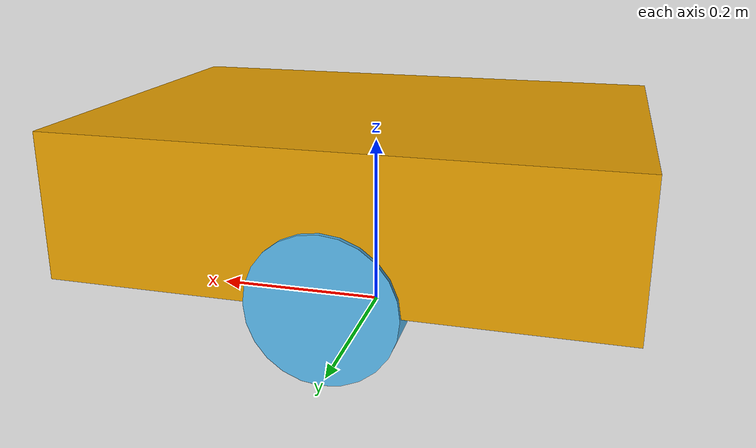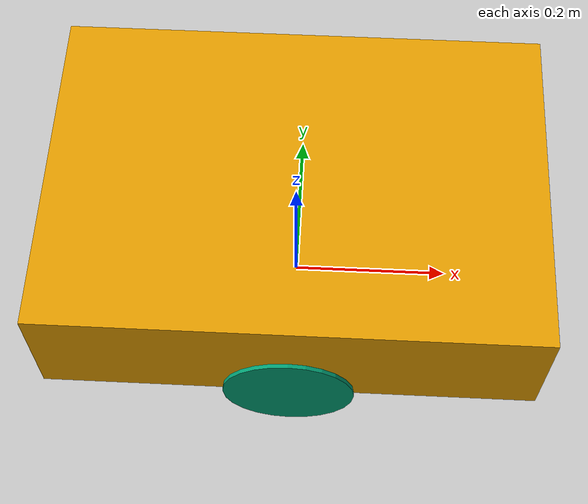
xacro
<?xml version="1.0"?>
<robot xmlns:xacro="http://www.ros.org/wiki/xacro" name="agv_m06">
  <xacro:property name="wheel_radius" value="0.08"/>
  <xacro:property name="half_track" value="0.19"/>
  <xacro:macro name="wheel" params="side y">
    <link name="${side}_wheel_link"><visual><origin rpy="1.5708 0 0"/><geometry><cylinder radius="${wheel_radius}" length="0.05"/></geometry></visual></link>
    <joint name="${side}_wheel_joint" type="continuous"><parent link="base_link"/><child link="${side}_wheel_link"/><origin xyz="0 ${y} ${wheel_radius}"/><axis xyz="0 1 0"/></joint>
  </xacro:macro>
  <link name="base_link"><visual><origin xyz="0 0 0.16"/><geometry><box size="0.60 0.42 0.16"/></geometry></visual></link>
  <xacro:wheel side="left" y="${half_track}"/><xacro:wheel side="right" y="${-half_track}"/>
</robot>
